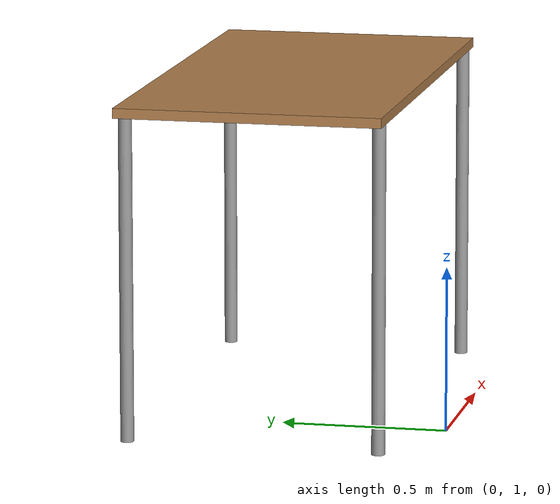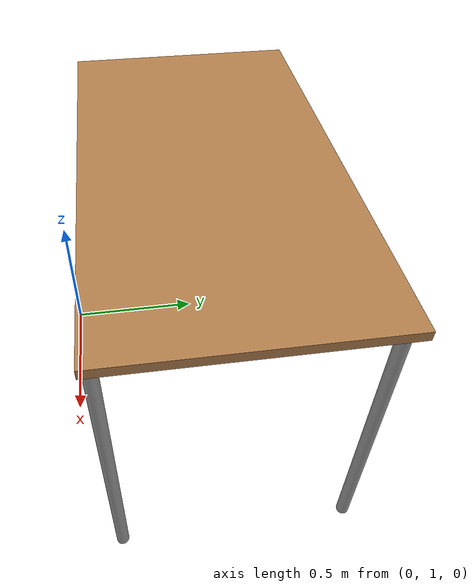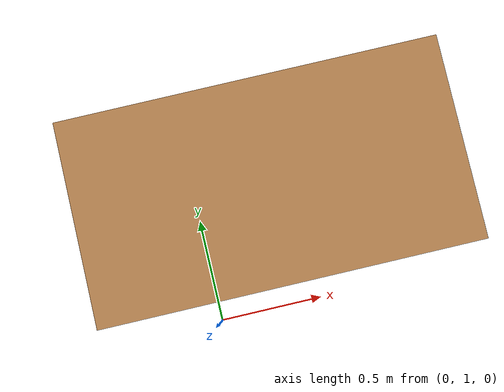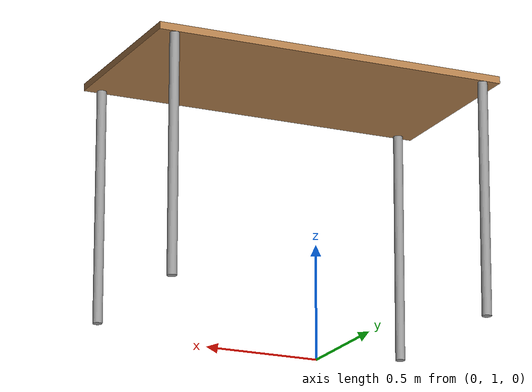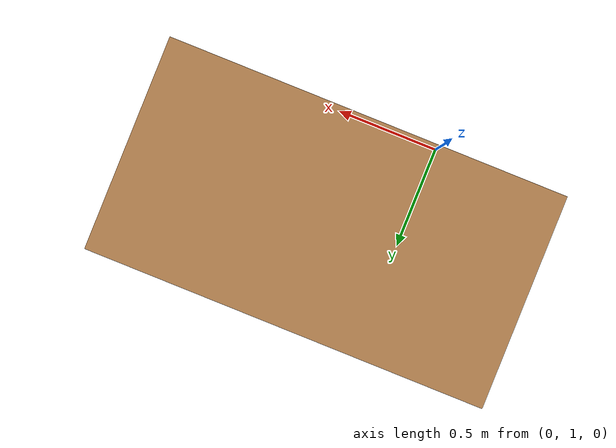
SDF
<?xml version='1.0'?>
<sdf version='1.7'>
    <model name='table'>
      <static>1</static>
      <link name='link'>
        <collision name='surface'>
          <pose>0 0 1 0 -0 0</pose>
          <geometry>
            <box>
              <size>1.5 0.8 0.03</size>
            </box>
          </geometry>
          <surface>
            <friction>
              <ode>
                <mu>0.6</mu>
                <mu2>0.6</mu2>
              </ode>
              <torsional>
                <ode/>
              </torsional>
            </friction>
            <contact>
              <ode/>
            </contact>
            <bounce/>
          </surface>
          <max_contacts>10</max_contacts>
        </collision>
        <visual name='visual1'>
          <pose>0 0 1 0 -0 0</pose>
          <geometry>
            <box>
              <size>1.5 0.8 0.03</size>
            </box>
          </geometry>
          <material>
            <script>
              <uri>file://media/materials/scripts/gazebo.material</uri>
              <name>Gazebo/Wood</name>
            </script>
          </material>
        </visual>
        <collision name='front_left_leg'>
          <pose>0.68 0.38 0.5 0 -0 0</pose>
          <geometry>
            <cylinder>
              <radius>0.02</radius>
              <length>1</length>
            </cylinder>
          </geometry>
          <max_contacts>10</max_contacts>
          <surface>
            <contact>
              <ode/>
            </contact>
            <bounce/>
            <friction>
              <torsional>
                <ode/>
              </torsional>
              <ode/>
            </friction>
          </surface>
        </collision>
        <visual name='front_left_leg'>
          <pose>0.68 0.38 0.5 0 -0 0</pose>
          <geometry>
            <cylinder>
              <radius>0.02</radius>
              <length>1</length>
            </cylinder>
          </geometry>
          <material>
            <script>
              <uri>file://media/materials/scripts/gazebo.material</uri>
              <name>Gazebo/Grey</name>
            </script>
          </material>
        </visual>
        <collision name='front_right_leg'>
          <pose>0.68 -0.38 0.5 0 -0 0</pose>
          <geometry>
            <cylinder>
              <radius>0.02</radius>
              <length>1</length>
            </cylinder>
          </geometry>
          <max_contacts>10</max_contacts>
          <surface>
            <contact>
              <ode/>
            </contact>
            <bounce/>
            <friction>
              <torsional>
                <ode/>
              </torsional>
              <ode/>
            </friction>
          </surface>
        </collision>
        <visual name='front_right_leg'>
          <pose>0.68 -0.38 0.5 0 -0 0</pose>
          <geometry>
            <cylinder>
              <radius>0.02</radius>
              <length>1</length>
            </cylinder>
          </geometry>
          <material>
            <script>
              <uri>file://media/materials/scripts/gazebo.material</uri>
              <name>Gazebo/Grey</name>
            </script>
          </material>
        </visual>
        <collision name='back_right_leg'>
          <pose>-0.68 -0.38 0.5 0 -0 0</pose>
          <geometry>
            <cylinder>
              <radius>0.02</radius>
              <length>1</length>
            </cylinder>
          </geometry>
          <max_contacts>10</max_contacts>
          <surface>
            <contact>
              <ode/>
            </contact>
            <bounce/>
            <friction>
              <torsional>
                <ode/>
              </torsional>
              <ode/>
            </friction>
          </surface>
        </collision>
        <visual name='back_right_leg'>
          <pose>-0.68 -0.38 0.5 0 -0 0</pose>
          <geometry>
            <cylinder>
              <radius>0.02</radius>
              <length>1</length>
            </cylinder>
          </geometry>
          <material>
            <script>
              <uri>file://media/materials/scripts/gazebo.material</uri>
              <name>Gazebo/Grey</name>
            </script>
          </material>
        </visual>
        <collision name='back_left_leg'>
          <pose>-0.68 0.38 0.5 0 -0 0</pose>
          <geometry>
            <cylinder>
              <radius>0.02</radius>
              <length>1</length>
            </cylinder>
          </geometry>
          <max_contacts>10</max_contacts>
          <surface>
            <contact>
              <ode/>
            </contact>
            <bounce/>
            <friction>
              <torsional>
                <ode/>
              </torsional>
              <ode/>
            </friction>
          </surface>
        </collision>
        <visual name='back_left_leg'>
          <pose>-0.68 0.38 0.5 0 -0 0</pose>
          <geometry>
            <cylinder>
              <radius>0.02</radius>
              <length>1</length>
            </cylinder>
          </geometry>
          <material>
            <script>
              <uri>file://media/materials/scripts/gazebo.material</uri>
              <name>Gazebo/Grey</name>
            </script>
          </material>
        </visual>
        <self_collide>0</self_collide>
        <enable_wind>0</enable_wind>
        <kinematic>0</kinematic>
      </link>
      <pose>0.35931 1.52307 0 0 -0 0</pose>
    </model>
    </sdf>
